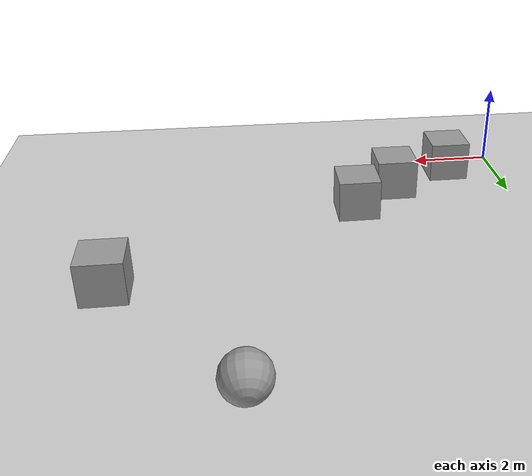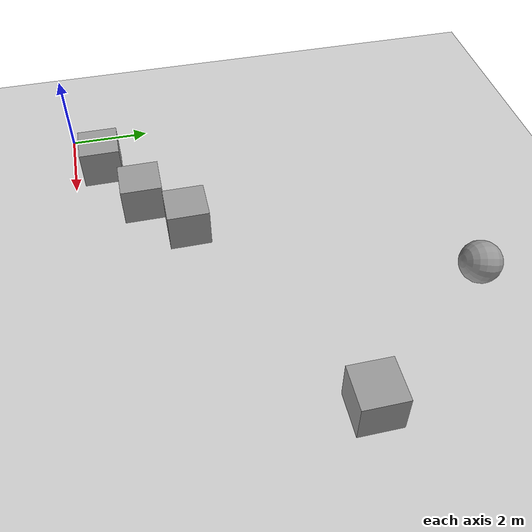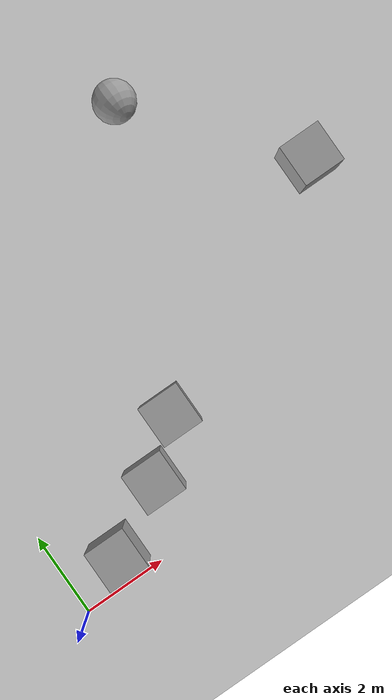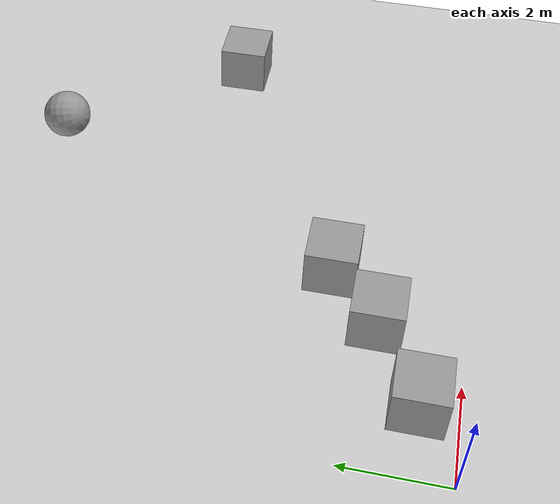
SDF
<sdf version="1.6">
 <world name="default">
  <plugin name="get_cubes_info" filename="libget_cubes_info.so"/>
  <light name="sun" type="directional">
   <pose>0 0 10 0 -0 0</pose>
   <diffuse>0.8 0.8 0.8 1</diffuse>
   <specular>0.2 0.2 0.2 1</specular>
   <attenuation>
    <range>1000</range>
    <constant>0.9</constant>
    <linear>0.01</linear>
    <quadratic>0.001</quadratic>
   </attenuation>
   <direction>-0.5 0.1 -0.9</direction>
  </light>
  <model name="ground_plane">
   <static>1</static>
   <link name="link">
    <collision name="collision">
     <geometry><plane><normal>0 0 1</normal><size>100 100</size></plane></geometry>
     <surface>
      <contact><collide_bitmask>65535</collide_bitmask></contact>
      <friction><ode><mu>100</mu><mu2>50</mu2></ode></friction>
     </surface>
    </collision>
    <visual name="visual">
     <cast_shadows>0</cast_shadows>
     <geometry><plane><normal>0 0 1</normal><size>100 100</size></plane></geometry>
     <material>
      <script><uri>file://media/materials/scripts/gazebo.material</uri><name>Gazebo/Grey</name></script>
     </material>
    </visual>
   </link>
  </model>
  <gravity>0 0 -9.8</gravity>
  <magnetic_field>6e-06 2.3e-05 -4.2e-05</magnetic_field>
  <atmosphere type="adiabatic"/>
  <physics name="default_physics" default="0" type="ode">
   <max_step_size>0.001</max_step_size>
   <real_time_factor>1</real_time_factor>
   <real_time_update_rate>1000</real_time_update_rate>
  </physics>
  <scene><ambient>0.4 0.4 0.4 1</ambient><background>0.7 0.7 0.7 1</background><shadows>1</shadows></scene>
  <audio><device>default</device></audio>
  <spherical_coordinates>
   <surface_model>EARTH_WGS84</surface_model>
   <latitude_deg>0</latitude_deg>
   <longitude_deg>0</longitude_deg>
   <elevation>0</elevation>
   <heading_deg>0</heading_deg>
  </spherical_coordinates>
  <model name="unit_box">
   <pose>1.36655 0.742042 0.499995 0 1e-05 0</pose>
   <link name="link">
    <inertial>
     <mass>1</mass>
     <inertia>
      <ixx>0.166667</ixx>
      <ixy>0</ixy>
      <ixz>0</ixz>
      <iyy>0.166667</iyy>
      <iyz>0</iyz>
      <izz>0.166667</izz>
     </inertia>
    </inertial>
    <collision name="collision"><geometry><box><size>1 1 1</size></box></geometry></collision>
    <visual name="visual">
     <geometry><box><size>1 1 1</size></box></geometry>
     <material>
      <script><name>Gazebo/Grey</name><uri>file://media/materials/scripts/gazebo.material</uri></script>
     </material>
    </visual>
   </link>
  </model>
  <model name="unit_box_0">
   <pose>2.97071 1.64901 0.499995 1e-05 -0 0</pose>
   <link name="link">
    <inertial>
     <mass>1</mass>
     <inertia>
      <ixx>0.166667</ixx>
      <ixy>0</ixy>
      <ixz>0</ixz>
      <iyy>0.166667</iyy>
      <iyz>0</iyz>
      <izz>0.166667</izz>
     </inertia>
    </inertial>
    <collision name="collision"><geometry><box><size>1 1 1</size></box></geometry></collision>
    <visual name="visual">
     <geometry><box><size>1 1 1</size></box></geometry>
     <material>
      <script><name>Gazebo/Grey</name><uri>file://media/materials/scripts/gazebo.material</uri></script>
     </material>
    </visual>
   </link>
  </model>
  <model name="unit_box_1">
   <pose>4.08985 2.63627 0.499995 -1.57081 -1.57079 1.57081</pose>
   <link name="link">
    <inertial>
     <mass>1</mass>
     <inertia>
      <ixx>0.166667</ixx>
      <ixy>0</ixy>
      <ixz>0</ixz>
      <iyy>0.166667</iyy>
      <iyz>0</iyz>
      <izz>0.166667</izz>
     </inertia>
    </inertial>
    <collision name="collision"><geometry><box><size>1 1 1</size></box></geometry></collision>
    <visual name="visual">
     <geometry><box><size>1 1 1</size></box></geometry>
     <material>
      <script><name>Gazebo/Grey</name><uri>file://media/materials/scripts/gazebo.material</uri></script>
     </material>
    </visual>
   </link>
  </model>
  <model name="unit_box_2">
   <pose>9.78057 5.48886 0.499995 -1e-05 -0 -0</pose>
   <link name="link">
    <inertial>
     <mass>1</mass>
     <inertia>
      <ixx>0.166667</ixx>
      <ixy>0</ixy>
      <ixz>0</ixz>
      <iyy>0.166667</iyy>
      <iyz>0</iyz>
      <izz>0.166667</izz>
     </inertia>
    </inertial>
    <collision name="collision"><geometry><box><size>1 1 1</size></box></geometry></collision>
    <visual name="visual">
     <geometry><box><size>1 1 1</size></box></geometry>
     <material>
      <script><name>Gazebo/Grey</name><uri>file://media/materials/scripts/gazebo.material</uri></script>
     </material>
    </visual>
   </link>
  </model>
  <model name="unit_sphere">
   <pose>7.00112 8.9506 0.5 1.30372 -0 0</pose>
   <link name="link">
    <inertial>
     <mass>1</mass>
     <inertia><ixx>0.1</ixx><ixy>0</ixy><ixz>0</ixz><iyy>0.1</iyy><iyz>0</iyz><izz>0.1</izz></inertia>
    </inertial>
    <collision name="collision"><geometry><sphere><radius>0.5</radius></sphere></geometry></collision>
    <visual name="visual">
     <geometry><sphere><radius>0.5</radius></sphere></geometry>
     <material>
      <script><name>Gazebo/Grey</name><uri>file://media/materials/scripts/gazebo.material</uri></script>
     </material>
    </visual>
   </link>
  </model>
 </world>
</sdf>
